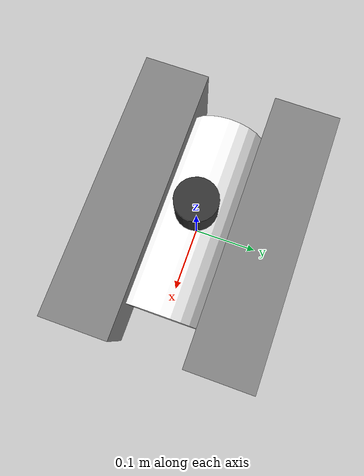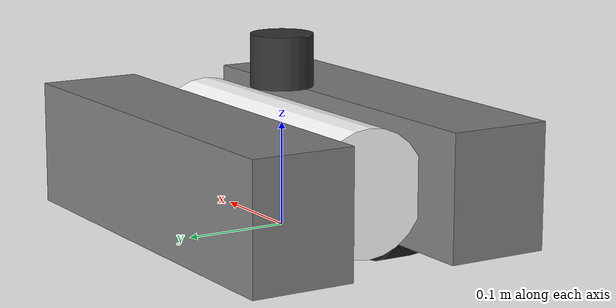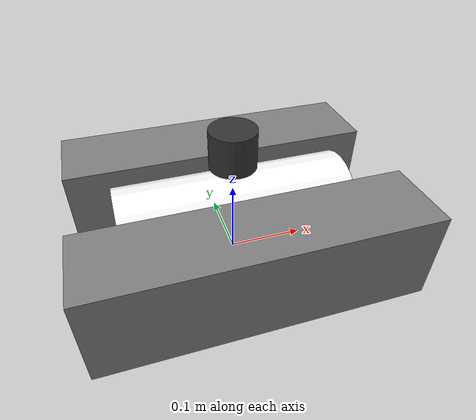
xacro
<?xml version="1.0"?>
<robot xmlns:xacro="http://www.ros.org/wiki/xacro" name="storm_robot">

  <!-- Proprietà fisiche STORM -->
  <xacro:property name="tu_mass"      value="2.81"/>
  <xacro:property name="wu_mass"      value="0.76"/>
  <xacro:property name="base_mass"    value="1.26"/>
  <xacro:property name="robot_length" value="0.410"/>
  <xacro:property name="robot_width"  value="0.305"/>
  <xacro:property name="robot_height" value="0.120"/>

  <link name="base_footprint"/>

  <joint name="base_joint" type="fixed">
    <parent link="base_footprint"/>
    <child link="base_link"/>
    <origin xyz="0 0 0.06" rpy="0 0 0"/>
  </joint>

  <link name="base_link">
    <visual>
      <origin rpy="0 1.5708 0" xyz="0 0 0"/>
      <geometry><cylinder radius="0.06" length="0.30"/></geometry>
      <material name="white"><color rgba="1 1 1 1"/></material>
    </visual>
    <collision>
      <origin rpy="0 1.5708 0" xyz="0 0 0"/>
      <geometry><cylinder radius="0.06" length="0.30"/></geometry>
    </collision>
    <inertial>
      <mass value="${base_mass}"/>
      <inertia ixx="0.01" iyy="0.01" izz="0.01" ixy="0" ixz="0" iyz="0"/>
    </inertial>
  </link>

  <!-- Macro per Unità Cingolate (Tracked Units) -->
  <xacro:macro name="tracked_unit" params="prefix y">
    <link name="${prefix}_tracked_unit">
      <visual>
        <geometry><box size="${robot_length} 0.10 ${robot_height}"/></geometry>
        <material name="grey"><color rgba="0.5 0.5 0.5 1"/></material>
      </visual>
      <inertial>
        <mass value="${tu_mass}"/>
        <inertia ixx="0.005" iyy="0.005" izz="0.005" ixy="0" ixz="0" iyz="0"/>
      </inertial>
    </link>
    <joint name="${prefix}_tu_joint" type="fixed">
      <parent link="base_link"/>
      <child link="${prefix}_tracked_unit"/>
      <origin xyz="0 ${y} 0"/>
    </joint>
  </xacro:macro>

  <xacro:tracked_unit prefix="left"  y="0.1025"/>
  <xacro:tracked_unit prefix="right" y="-0.1025"/>

  <!-- Macro per Unità a Ruote (Wheeled Units) -->
  <!-- VTM rimosso: ruote collegate direttamente a base_link -->
  <!-- Questo elimina il joint prismatico che causava instabilità del solver -->
  <xacro:macro name="wheel" params="prefix x y">
    <link name="${prefix}_wheel">
      <visual>
        <origin rpy="1.5708 0 0"/>
        <geometry><cylinder radius="0.05" length="0.04"/></geometry>
        <material name="black"><color rgba="0.1 0.1 0.1 1"/></material>
      </visual>
      <collision>
        <origin rpy="1.5708 0 0"/>
        <geometry><cylinder radius="0.05" length="0.04"/></geometry>
      </collision>
      <inertial>
        <mass value="${wu_mass}"/>
        <inertia ixx="0.001" iyy="0.001" izz="0.001" ixy="0" ixz="0" iyz="0"/>
      </inertial>
    </link>
    <joint name="${prefix}_wheel_joint" type="continuous">
      <parent link="base_link"/>
      <child link="${prefix}_wheel"/>
      <origin xyz="${x} ${y} -0.04"/>
      <axis xyz="0 1 0"/>
    </joint>
    <gazebo reference="${prefix}_wheel">
      <mu1>1.0</mu1>
      <mu2>1.0</mu2>
    </gazebo>
  </xacro:macro>

  <xacro:wheel prefix="fl" x="0.06"  y="0.08"/>
  <xacro:wheel prefix="fr" x="0.06"  y="-0.08"/>
  <xacro:wheel prefix="rl" x="-0.06" y="0.08"/>
  <xacro:wheel prefix="rr" x="-0.06" y="-0.08"/>

  <!-- LIDAR Hokuyo -->
  <joint name="lidar_joint" type="fixed">
    <parent link="base_link"/>
    <child link="lidar_link"/>
    <origin xyz="0 0 0.10" rpy="0 0 0"/>
  </joint>

  <link name="lidar_link">
    <visual>
      <geometry><cylinder radius="0.03" length="0.05"/></geometry>
      <material name="dark"><color rgba="0.2 0.2 0.2 1"/></material>
    </visual>
    <inertial>
      <mass value="0.1"/>
      <inertia ixx="0.001" iyy="0.001" izz="0.001" ixy="0" ixz="0" iyz="0"/>
    </inertial>
  </link>

  <gazebo reference="lidar_link">
    <sensor name="lidar" type="gpu_lidar">
      <pose>0 0 0 0 0 0</pose>
      <topic>/model/storm/scan</topic>
      <update_rate>10</update_rate>
      <lidar>
        <scan>
          <horizontal>
            <samples>512</samples>
            <resolution>1</resolution>
            <min_angle>-2.356</min_angle>
            <max_angle>2.356</max_angle>
          </horizontal>
        </scan>
        <range>
          <min>0.15</min>
          <max>5.0</max>
          <resolution>0.01</resolution>
        </range>
        <visualize>true</visualize>
      </lidar>
      <always_on>true</always_on>
      <ignition_frame_id>lidar_link</ignition_frame_id>
    </sensor>
  </gazebo>

  <!-- Plugin DiffDrive per la locomozione -->
  <gazebo>
    <plugin filename="libignition-gazebo-diff-drive-system.so" name="ignition::gazebo::systems::DiffDrive">
      <left_joint>fl_wheel_joint</left_joint>
      <left_joint>rl_wheel_joint</left_joint>
      <right_joint>fr_wheel_joint</right_joint>
      <right_joint>rr_wheel_joint</right_joint>
      <wheel_separation>0.16</wheel_separation>
      <wheel_radius>0.05</wheel_radius>
      <topic>/model/storm/cmd_vel</topic>
    </plugin>
  </gazebo>

  <gazebo>
    <plugin filename="libignition-gazebo-joint-state-publisher-system.so" name="ignition::gazebo::systems::JointStatePublisher">
      <topic>/model/storm/joint_states</topic>
      <joint_name>fl_wheel_joint</joint_name>
      <joint_name>fr_wheel_joint</joint_name>
      <joint_name>rl_wheel_joint</joint_name>
      <joint_name>rr_wheel_joint</joint_name>
    </plugin>
  </gazebo>

<gazebo>
  <plugin filename="libignition-gazebo6-odometry-publisher-system.so"
          name="ignition::gazebo::systems::OdometryPublisher">
    <odom_frame>odom</odom_frame>
    <robot_base_frame>base_link</robot_base_frame>
    <odom_topic>/model/storm/odometry</odom_topic>
    <tf_topic>/model/storm/tf_odom</tf_topic>
    <publish_tf>true</publish_tf>
  </plugin>
</gazebo>

</robot>
